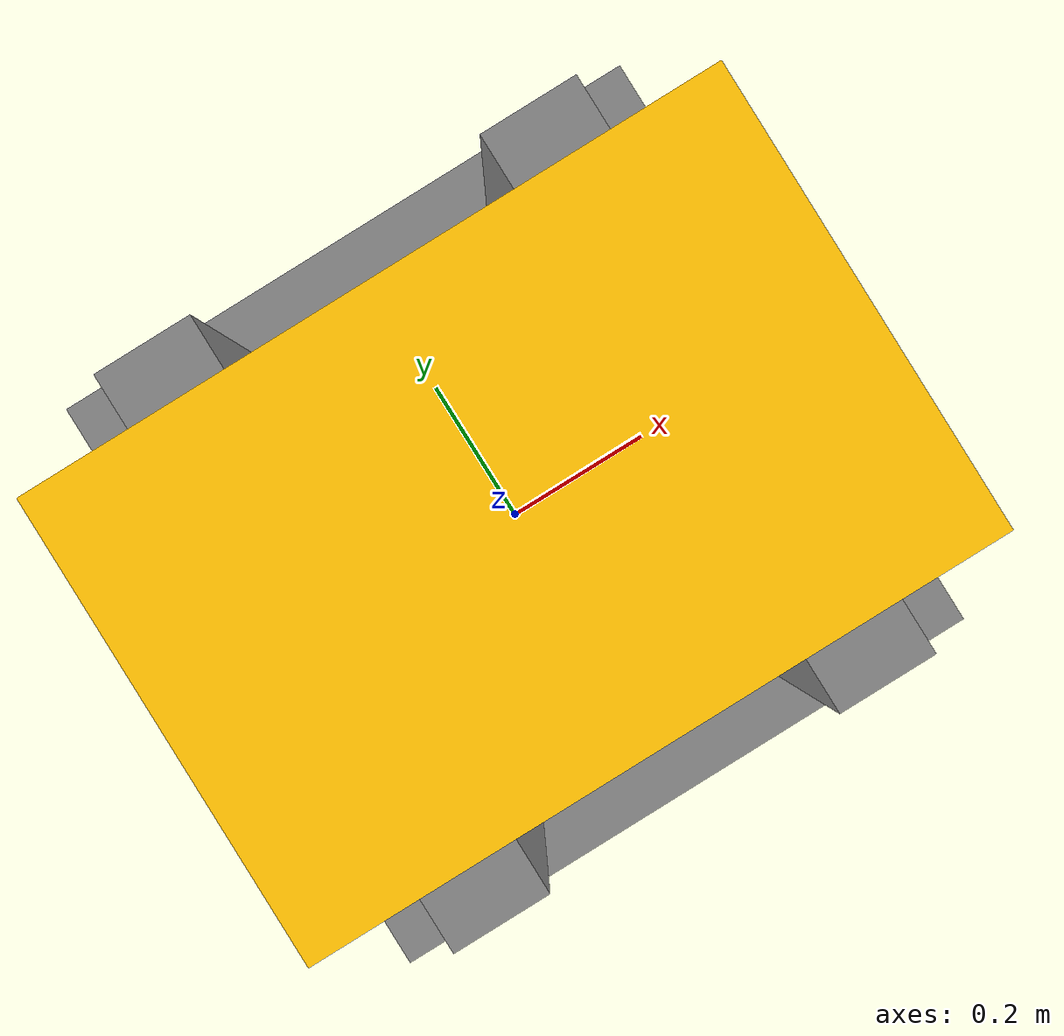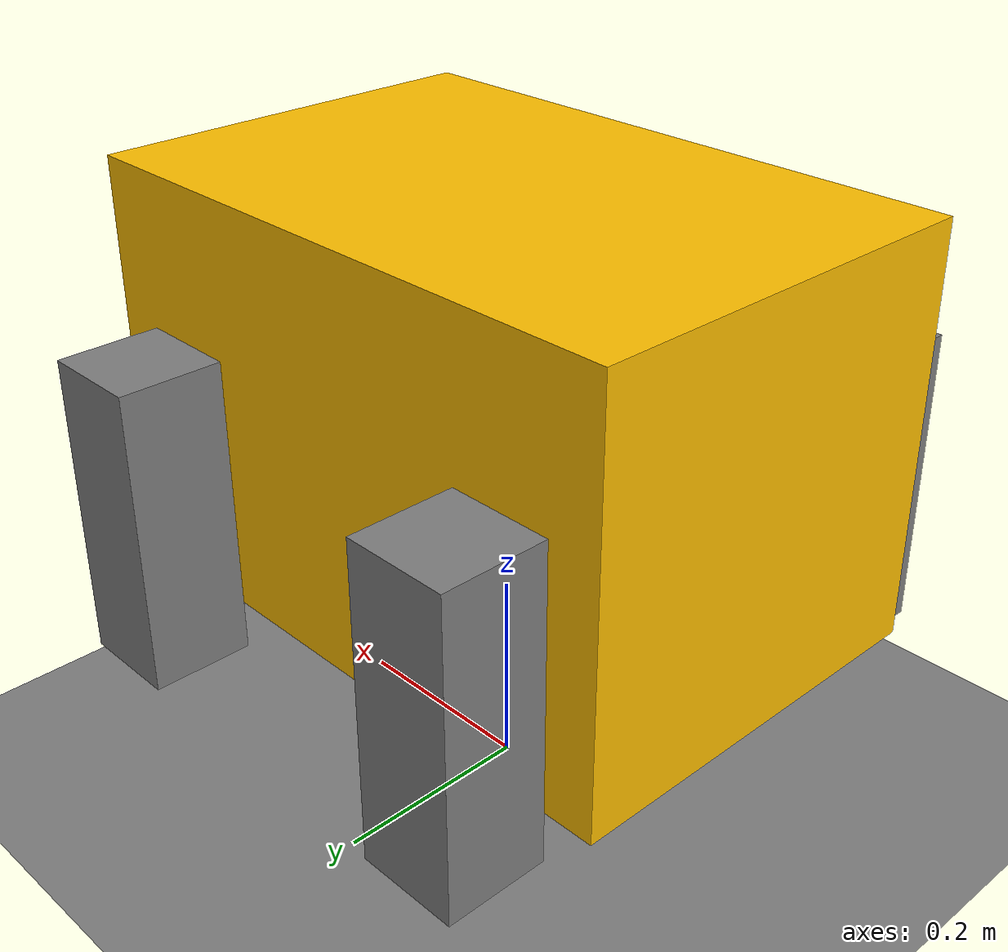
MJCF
<mujoco><option>timestep="0.1"</option><worldbody><light diffuse=".5 .5 .5" dir="0 0 1" pos="0 0 3" /><geom name="floor" size="2 2 0.1" type="plane" /><body><freejoint name="root" /><geom name="head" pos="0 0 0.4" rgba="1 .75 0 1" size="0.3 0.2 0.2" type="box" /><body name="leg1"><geom pos="0.2 0.25 0.3" size="0.05 0.05 0.15" type="box" /><joint axis="0 1 0" limited="true" name="leg1Hinge" pos="0 0 0.5" range="-10 10" /></body><body name="leg2"><geom pos="-0.2 0.25 0.3" size="0.05 0.05 0.15" type="box" /><joint axis="0 1 0" limited="true" name="leg2Hinge" pos="0 0 0.5" range="-10 10" /></body><body name="leg3"><geom name="leg3" pos="0.2 -0.25 0.3" size="0.05 0.05 0.15" type="box" /><joint axis="0 1 0" limited="true" name="leg3Hinge" pos="0 0 0.5" range="-10 10" /></body><body name="leg4"><geom name="leg4" pos="-0.2 -0.25 0.3" size="0.05 0.05 0.15" type="box" /><joint axis="0 1 0" limited="true" name="leg4Hinge" pos="0 0 0.5" range="-10 10" /></body></body></worldbody><actuator><motor gear="50" joint="leg1Hinge" name="leg1Hinge" /><motor gear="50" joint="leg2Hinge" name="leg2Hinge" /><motor gear="50" joint="leg3Hinge" name="leg3Hinge" /><motor gear="50" joint="leg4Hinge" name="leg4Hinge" /></actuator></mujoco>
